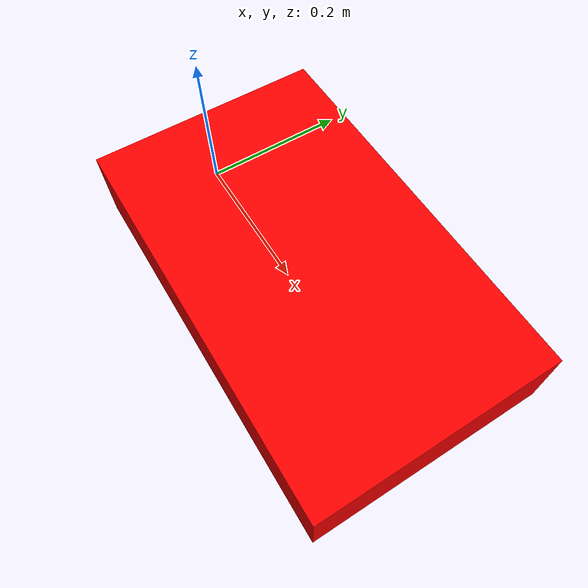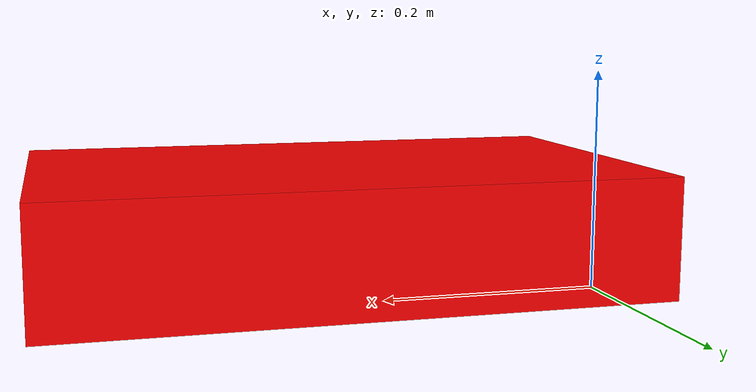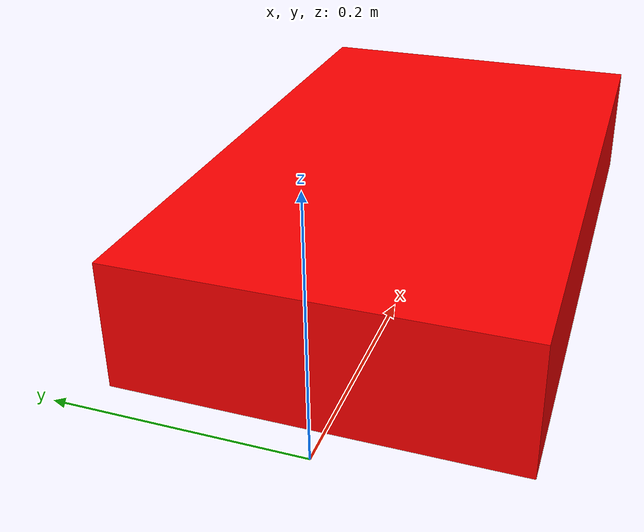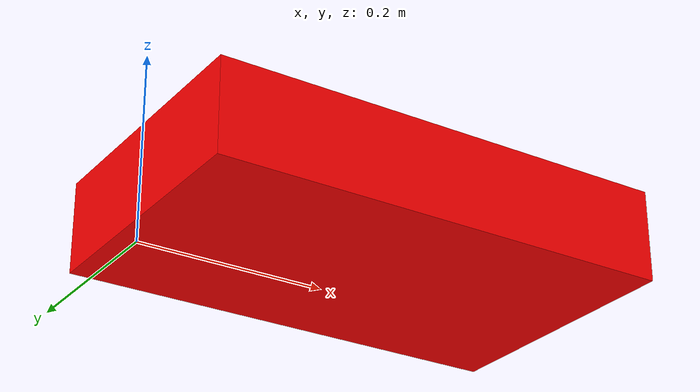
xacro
<?xml version="1.0"?>
<robot xmlns:xacro="http://www.ros.org/wiki/xacro">
    <link name="base_link" />

    <!-- body attributes -->
    <xacro:property name="body_mass" value="2.0"/>

    <!-- creating a resuable macro for the box inertial -->
    <xacro:macro name="inertial_box" params="mass x y z">
        <inertial>
            <origin xyz="0.0 0.0 0.0" rpy="0.0 0.0 0.0"/>
            <mass value="${mass}" />
            <inertia ixx="${(1/12) * mass * (y*y+z*z)}" ixy="0.0" ixz="0.0"
                    iyy="${(1/12) * mass * (x*x+z*z)}" iyz="0.0"
                    izz="${(1/12) * mass * (x*x+y*y)}" />
        </inertial>
    </xacro:macro>

    <link name="chassis">

        <xacro:inertial_box mass="${body_mass}" x="0.5" y="0.3" z="0.1" />

        <visual>
            <origin xyz="0.0 0.0 0.075" rpy="0.0 0.0 0.0"/>
            <geometry>
                <box size="0.5 0.3 0.10"/>
            </geometry>
            <material name="">
                <color rgba="1.0 0.0 0.0 1.0"/>
                <texture filename=""/>
            </material>
        </visual>
        <collision>
            <origin xyz="0.0 0.0 0.075" rpy="0.0 0.0 0.0"/>
            <geometry>
                <box size="0.5 0.3 0.10"/>
            </geometry>
        </collision>
    </link>

    <joint name="base_joint" type="fixed">
        <origin xyz="0.25 0.0 0.0" rpy="0.0 0.0 0.0"/>
        <parent link="base_link"/>
        <child link="chassis"/>
        <axis xyz="0.0 0.0 0.0"/>
    </joint>

    <gazebo reference="chassis">
        <mu1>0.002</mu1>
        <mu2>0.002</mu2>
        <material>Gazebo/Red</material>
    </gazebo>

    <link name="imu_link" />

    <joint name="imu_joint" type="fixed">
        <origin xyz="0.25 0.0 0.03" rpy="0.0 0.0 0.0"/>
        <parent link="base_link"/>
        <child link="imu_link"/>
        <axis xyz="0.0 0.0 0.0"/>
    </joint>

    <gazebo>
        <plugin name="imu_plugin" filename="libgazebo_ros_imu.so">
          <alwaysOn>true</alwaysOn>
          <bodyName>chassis</bodyName>
          <topicName>imu</topicName>
          <frameName>imu_link</frameName>
          <serviceName>imu_service</serviceName>
          <gaussianNoise>0.0</gaussianNoise>
          <updateRate>20.0</updateRate>
        </plugin>
    </gazebo>

    <gazebo reference="imu_link">
        <gravity>true</gravity>
        <sensor name="imu_sensor" type="imu">
          <always_on>true</always_on>
          <update_rate>100</update_rate>
          <visualize>true</visualize>
          <topic>__default_topic__</topic>
          <plugin filename="libgazebo_ros_imu_sensor.so" name="imu_plugin">
            <topicName>imu</topicName>
            <bodyName>imu_link</bodyName>
            <updateRateHZ>10.0</updateRateHZ>
            <gaussianNoise>0.0</gaussianNoise>
            <xyzOffset>0 0 0</xyzOffset>
            <rpyOffset>0 0 0</rpyOffset>
            <frameName>imu_link</frameName>
            <initialOrientationAsReference>false</initialOrientationAsReference>
          </plugin>
          <pose>0 0 0 0 0 0</pose>
        </sensor>
    </gazebo>
</robot>
